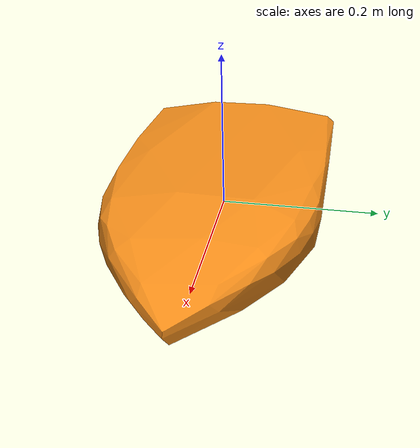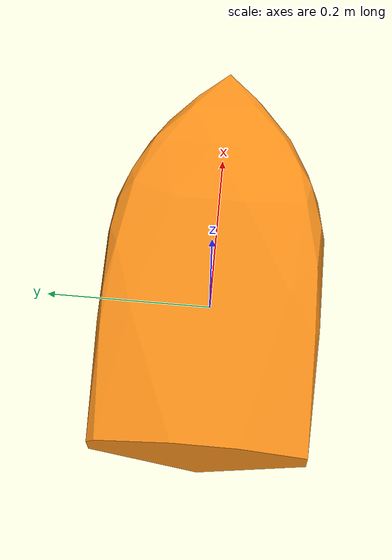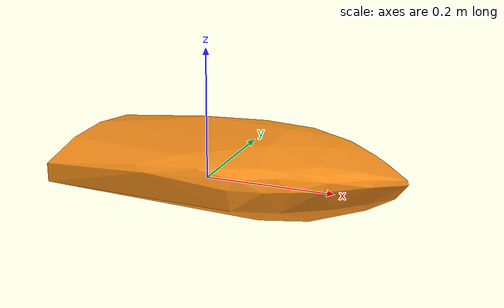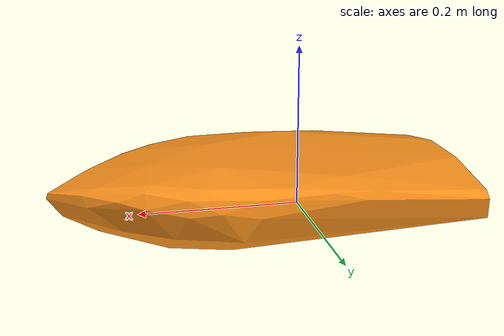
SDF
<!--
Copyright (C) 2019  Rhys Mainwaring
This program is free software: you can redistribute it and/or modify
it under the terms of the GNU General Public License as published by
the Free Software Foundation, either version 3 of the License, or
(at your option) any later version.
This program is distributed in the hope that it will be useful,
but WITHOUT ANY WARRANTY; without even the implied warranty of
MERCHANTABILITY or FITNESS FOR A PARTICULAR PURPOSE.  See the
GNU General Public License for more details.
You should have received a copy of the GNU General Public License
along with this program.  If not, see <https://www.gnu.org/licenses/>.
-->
<?xml version='1.0'?>
<sdf version='1.6'>
  <model name='jet_boat'>
    <pose>0 0 0 0 0 0</pose>
    <static>false</static>

    <plugin name="hydrodynamics" filename="libHydrodynamicsPlugin.so">
      <wave_model>ocean</wave_model>
      <damping_on>true</damping_on>
      <viscous_drag_on>true</viscous_drag_on>
      <pressure_drag_on>true</pressure_drag_on>
      <cDampL1>1.0E-6</cDampL1>
      <cDampL2>1.0E-6</cDampL2>
      <cDampR1>1.0E-6</cDampR1>
      <cDampR2>1.0E-6</cDampR2>
      <cPDrag1>1.0E+2</cPDrag1>
      <cPDrag2>1.0E+2</cPDrag2>
      <fPDrag>0.4</fPDrag>
      <cSDrag1>1.0E+2</cSDrag1>
      <cSDrag2>1.0E+2</cSDrag2>
      <fSDrag>0.4</fSDrag>
      <vRDrag>1.0</vRDrag>
      <markers>
        <update_rate>30</update_rate>
        <water_patch>false</water_patch>
        <waterline>false</waterline>
        <underwater_surface>false</underwater_surface>
      </markers>
    </plugin>

    <!-- Hull -->
    <link name="base_link">
      <visual name="base_visual">
        <geometry>
          <mesh>
            <scale>1 1 1</scale>
            <uri>model://jet_boat/meshes/jet_boat_hull.stl</uri>
          </mesh>
        </geometry>
        <material>
          <script>
            <name>Gazebo/Orange</name>
          </script>
        </material>
      </visual>
      <collision name="base_collision">
        <geometry>
          <mesh>
            <scale>1 1 1</scale>
            <uri>model://jet_boat/meshes/jet_boat_hull_collision.stl</uri>
          </mesh>
        </geometry>
      </collision>
      <inertial>
        <pose>0 0 0 0 0 0</pose>
        <mass>1.5</mass>
        <inertia>
          <ixx>0.012675</ixx>
          <ixy>0</ixy>
          <iyy>0.0375875</iyy>
          <iyz>0</iyz>
          <izz>0.0375875</izz>
        </inertia>
      </inertial>
    </link>

  </model>
</sdf>
